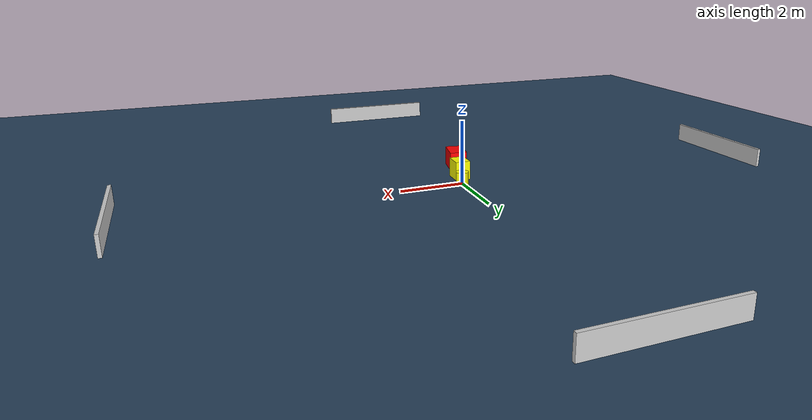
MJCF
<?xml version="1.0" ?>
<mujoco model="generated_environment">
  <option timestep="0.01" integrator="RK4" cone="elliptic"/>
  <default>
    <geom density="1"/>
  </default>
  <asset>
    <texture builtin="gradient" height="3072" name="skybox" rgb1="0.3 0.5 0.7" rgb2="0 0 0" type="skybox" width="512"/>
    <texture builtin="checker" height="300" name="groundplane" rgb1="0.2 0.3 0.4" rgb2="0.1 0.2 0.3" type="2d" width="300"/>
    <material name="groundplane" reflectance="0.2" texrepeat="5 5" texture="groundplane"/>
  </asset>
  <worldbody>
    <light dir="0 0 -1" directional="true" pos="0 0 1.5"/>
    <geom condim="3" friction="0.5 0.005 0.001" material="groundplane" name="floor" pos="0 0 0" size="0 0 0.05" type="plane"/>
    <body name="walls">
      <geom name="wall_1" condim="4" pos="-10.0 0.0 0.3" rgba="0.800000011920929 0.800000011920929 0.800000011920929 1.0" size="0.05 2.0 0.3" type="box"/>
      <geom name="wall_2" condim="4" pos="10.0 0.0 0.3" rgba="0.800000011920929 0.800000011920929 0.800000011920929 1.0" size="0.05 2.0 0.3" type="box"/>
      <geom name="wall_3" condim="4" pos="0.0 -10.0 0.3" rgba="0.800000011920929 0.800000011920929 0.800000011920929 1.0" size="2.0 0.05 0.3" type="box"/>
      <geom name="wall_4" condim="4" pos="0.0 10.0 0.3" rgba="0.800000011920929 0.800000011920929 0.800000011920929 1.0" size="2.0 0.05 0.3" type="box"/>
    </body>
    <body name="robot">
      <joint name="joint_x" type="slide" pos="0 0 0" axis="1 0 0"/>
      <joint name="joint_y" type="slide" pos="0 0 0" axis="0 1 0"/>
      <geom name="robot" type="cylinder" pos="0.0 0.0 0.2" size="0.2 0.2 0.0" mass="5.0" friction="1.0 0.005 0.0001" condim="4" rgba="1.0 1.0 0.0 1.0"/>
    </body>
    <body name="obstacle_1_movable">
      <geom name="obstacle_1_movable" condim="4" pos="-0.18485098855395538 -0.6728347091330475 0.3" euler="0 0 358.8580240385905" friction="0.0 0.005 0.001" rgba="1.0 1.0 0.0 1.0" size="0.23600953975556388 0.3040181052662008 0.3" type="box" mass="0.1"/>
      <joint type="free"/>
    </body>
    <body name="obstacle_2_static">
      <geom name="obstacle_2_static" condim="4" pos="-0.5307300492597259 -1.8598533732474383 0.3" euler="0 0 349.76399520717325" friction="0.0 0.005 0.001" rgba="1.0 0.0 0.0 1.0" size="0.27663578669326633 0.4328726015406018 0.3" type="box"/>
    </body>
  </worldbody>
  <actuator>
    <motor name="actuator_x" joint="joint_x" gear="1" ctrlrange="-1 1"/>
    <motor name="actuator_y" joint="joint_y" gear="1" ctrlrange="-1 1"/>
  </actuator>
</mujoco>
